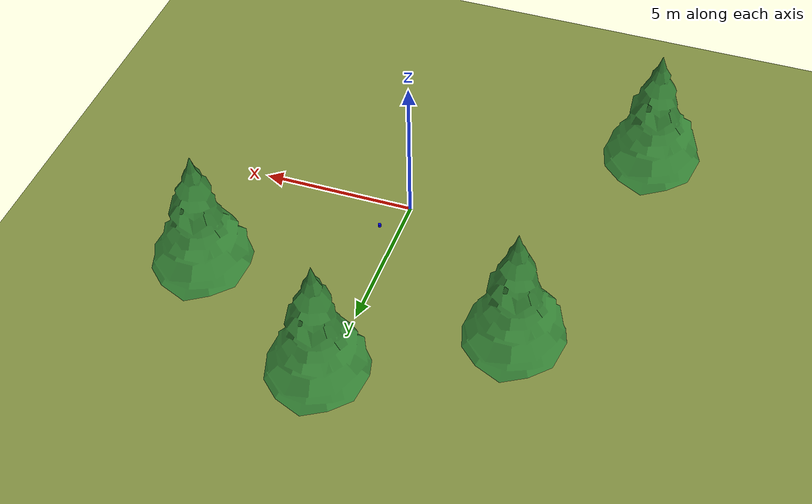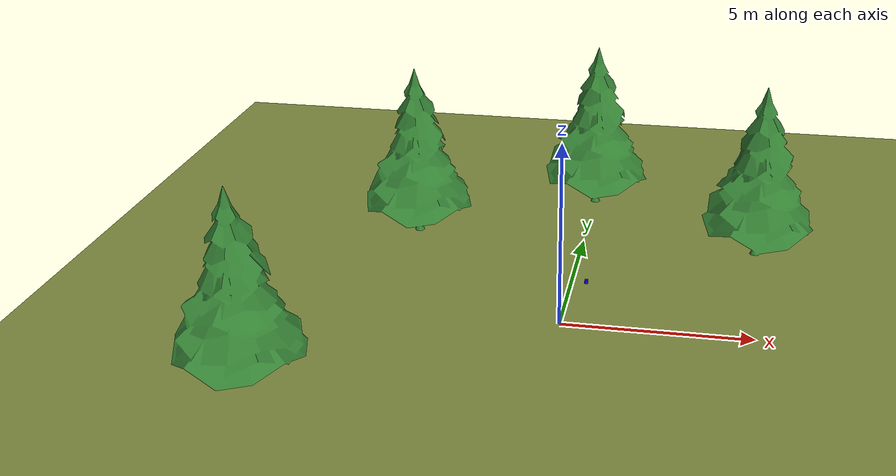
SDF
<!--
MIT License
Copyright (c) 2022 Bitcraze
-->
<sdf version="1.6">
 <world name="crazyflie_world">
  <physics name="1ms" type="ode">
   <max_step_size>0.001</max_step_size>
   <real_time_factor>0.03</real_time_factor>
  </physics>
  <plugin filename="gz-sim-physics-system" name="gz::sim::systems::Physics"/>
  <plugin filename="gz-sim-user-commands-system" name="gz::sim::systems::UserCommands"/>
  <plugin filename="gz-sim-scene-broadcaster-system" name="gz::sim::systems::SceneBroadcaster"/>
  <plugin filename="gz-sim-sensors-system" name="gz::sim::systems::Sensors">
   <render_engine>ogre2</render_engine>
  </plugin>
  <light type="directional" name="sun">
   <pose>0 0 10 0 0 0</pose>
   <diffuse>0.8 0.8 0.8 1</diffuse>
   <specular>0.2 0.2 0.2 1</specular>
   <attenuation>
    <range>1000</range>
    <constant>0.9</constant>
    <linear>0.01</linear>
    <quadratic>0.001</quadratic>
   </attenuation>
   <direction>-0.5 0.1 -0.9</direction>
  </light>
  <model name="ground_plane">
   <static>true</static>
   <link name="link">
    <collision name="collision">
     <geometry><plane><normal>0 0 1</normal><size>100 100</size></plane></geometry>
    </collision>
    <visual name="visual">
     <geometry><plane><normal>0 0 1</normal><size>100 100</size></plane></geometry>
     <material>
      <ambient>0.30 0.35 0.15 1</ambient>
      <diffuse>0.50 0.55 0.25 1</diffuse>
      <specular>0.02 0.02 0.02 1</specular>
     </material>
    </visual>
   </link>
  </model>
  <include><uri>file://lidar_3D.sdf</uri><name>3D_lidar</name><pose>0.5 1.5 0.5 0 0 0</pose></include>
  <include><uri>model://pine_tree</uri><name>pine_tree</name><pose>-5 5 0 0 0 0</pose></include>
  <include><uri>model://pine_tree</uri><name>pine_tree3</name><pose>5 5 0 0 0 0</pose></include>
  <include><uri>model://pine_tree</uri><name>pine_tree4</name><pose>0 8 0 0 0 0</pose></include>
  <include><uri>model://pine_tree</uri><name>pine_tree2</name><pose>-7 -4 0 0 0 0</pose></include>
 </world>
</sdf>

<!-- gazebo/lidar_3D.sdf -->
<sdf version="1.6">

  <model name="3D_lidar_model">
    <static>true</static>

    <link name="3Dlidar_link">
        <visual name="3Dlidar_visual">
          <geometry>
            <cylinder>
              <radius>0.05</radius>
              <length>0.1</length>
            </cylinder>
          </geometry>
          <material>
            <ambient>0 0 1 1</ambient>
            <diffuse>0 0 1 1</diffuse>
          </material>
        </visual>

      <sensor name="3D_lidar" type="gpu_lidar">
        <always_on>1</always_on>
        <update_rate>10</update_rate>
        <topic>my_3D_lidar</topic>

        <lidar>
          <scan>

            <horizontal>
              <samples>1024</samples>
              <resolution>1</resolution>
              <min_angle>-3.14159</min_angle>
              <max_angle>3.14159</max_angle>
            </horizontal>

            <vertical>
              <samples>64</samples>
              <resolution>1</resolution>
              <min_angle>-0.79</min_angle>
              <max_angle>0.79</max_angle>
            </vertical> <!-- ouster os0 -->

          </scan>

          <range>
            <min>0.1</min>
            <max>75.0</max>
          </range>

        </lidar>

        <visualize>true</visualize>

      </sensor>

    </link>

  </model>

</sdf>

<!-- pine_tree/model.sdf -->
<sdf version="1.6">
  <model name="pine_tree">
    <static>true</static>
    <link name="link">
      <collision name="collision">
        <geometry>
          <mesh>
            <uri>model://pine_tree/meshes/pine_tree.dae</uri>
          </mesh>
        </geometry>
      </collision>
      <visual name="branch">
        <geometry>
          <mesh>
            <uri>model://pine_tree/meshes/pine_tree.dae</uri>
            <submesh>
              <name>Branch</name>
            </submesh>
          </mesh>
        </geometry>
        <material>
          <ambient>0.2 0.5 0.2 1</ambient>
          <diffuse>0.2 0.5 0.2 1</diffuse>
          <specular>0.1 0.1 0.1 1</specular>
        </material>
      </visual>
      <visual name="bark">
        <geometry>
          <mesh>
            <uri>model://pine_tree/meshes/pine_tree.dae</uri>
            <submesh>
              <name>Bark</name>
            </submesh>
          </mesh>
        </geometry>
        <material>
          <ambient>0.25 0.15 0.08 1</ambient>
          <diffuse>0.35 0.22 0.12 1</diffuse>
          <specular>0.05 0.05 0.05 1</specular>
        </material>
      </visual>
    </link>
  </model>
</sdf>
